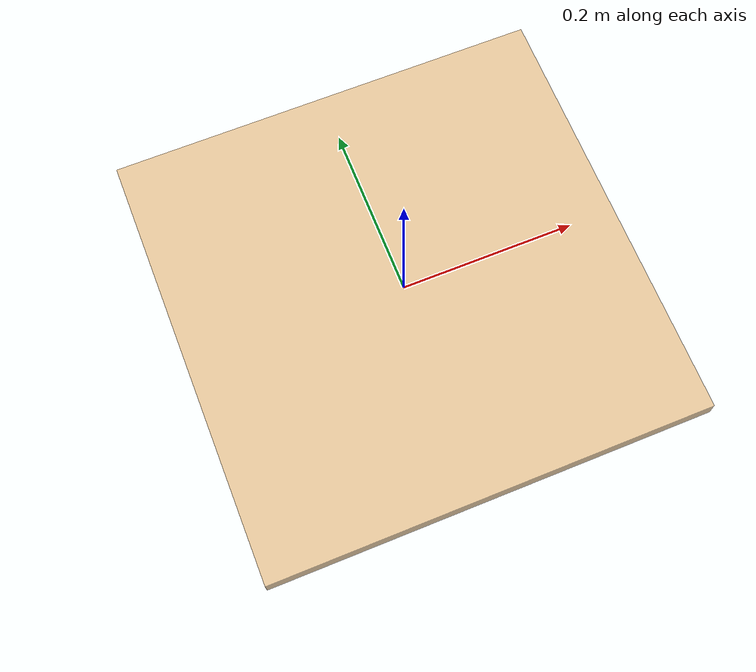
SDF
<?xml version="1.0"?>

<!--
  This file contains a box-shaped table of 0.5mx0.5mx0.0235m
-->

<sdf version="1.7">
  <model name="table">

    <joint name="world_table_offset" type="fixed">
      <child>table_link</child>
      <parent>world</parent>
      <axis>
        <limit>
          <effort>0</effort>
        </limit>
      </axis>
    </joint>

    <link name="table_link">
      <pose relative_to="__model__">0 0 0 0 0 0</pose>
      <inertial>
        <mass>1.0</mass>
        <inertia>
          <ixx>0.001</ixx>
          <ixy>0</ixy>
          <ixz>0</ixz>
          <iyy>0.001</iyy>
          <iyz>0</iyz>
          <izz>0.001</izz>
        </inertia>
      </inertial>

      <visual name="visual">
        <geometry>
          <box>
            <size>0.5 0.5 0.0235</size>
          </box>
        </geometry>
        <material>
          <diffuse>0.871 0.722 0.529 0.8</diffuse>
        </material>
      </visual>

      <collision name="collision">
        <geometry>
          <box>
            <size>0.5 0.5 0.0235</size>
          </box>
        </geometry>
        <surface>
          <friction>
            <ode>
              <mu>1.0</mu>
              <mu2>1.0</mu2>
            </ode>
          </friction>
        </surface>
      </collision>
    </link>

  </model>
</sdf>
